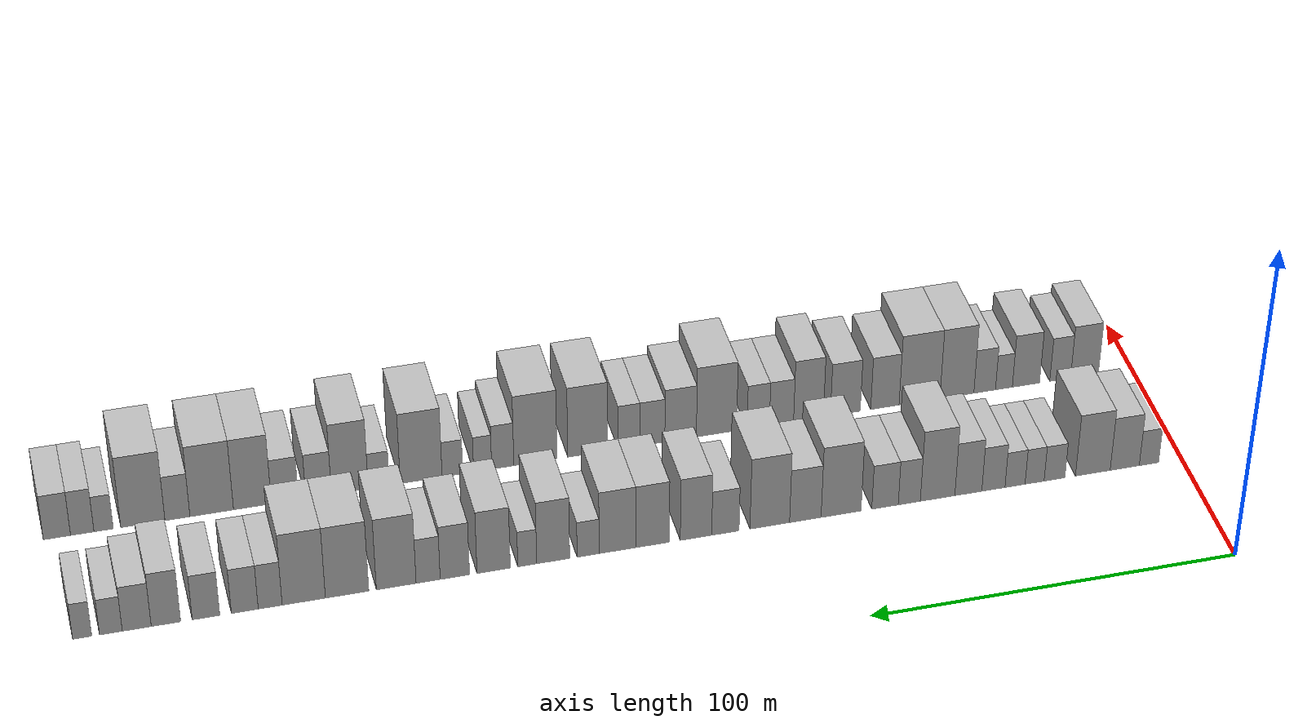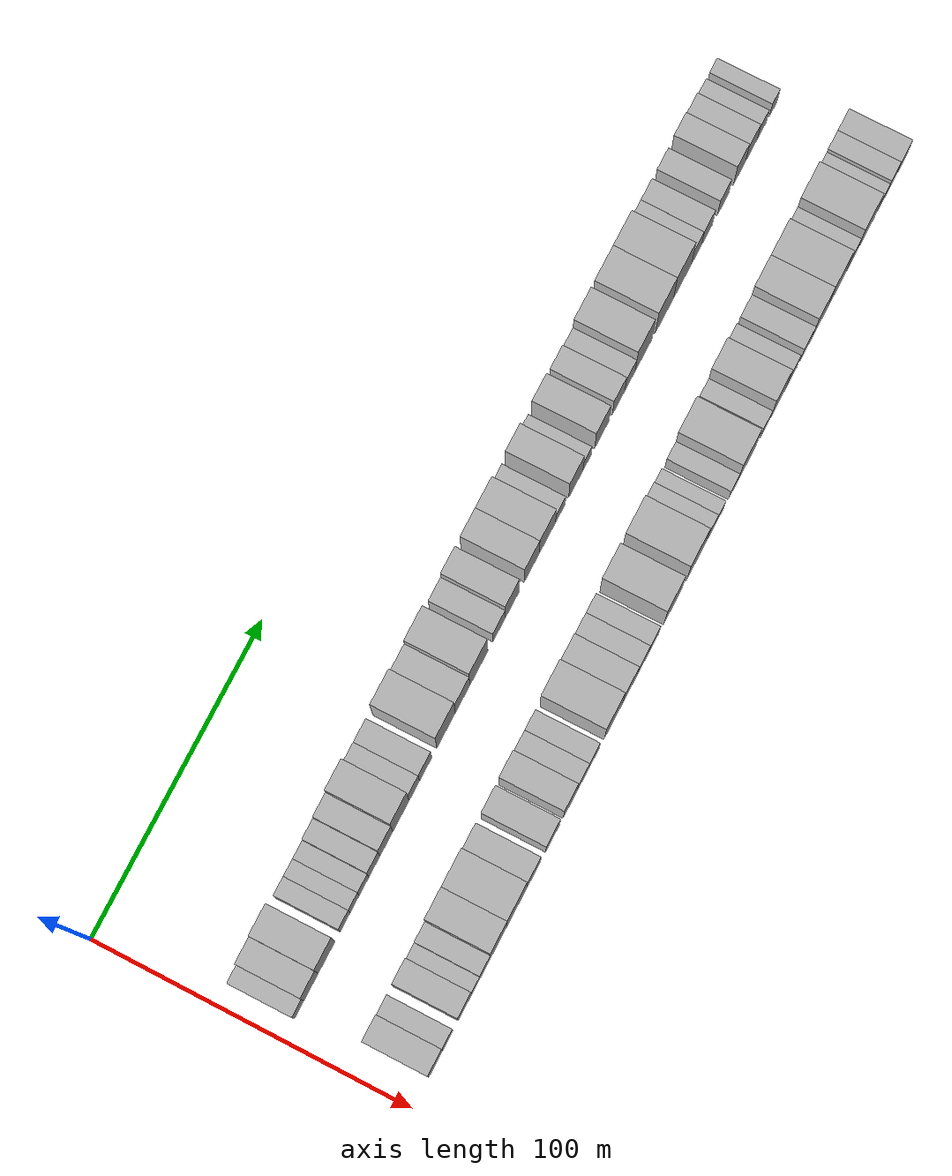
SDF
<sdf version="1.6">
 <world name="default">
  <model name="building_32">
   <static>1</static>
   <pose>50.0000 9.4290 0 0.000000 0.000000 0.000000</pose>
   <link name="link">
    <pose>0 0 6.00 0 0 0</pose>
    <collision name="collision"><geometry><box><size>20.0000 5.5220 12.0000</size></box></geometry></collision>
    <visual name="visual">
     <cast_shadows>0</cast_shadows>
     <geometry><box><size>20.0000 5.5220 12.0000</size></box></geometry>
     <material>
      <script>
       <uri>model://HANNAS_wall/materials/scripts</uri>
       <uri>model://HANNAS_wall/materials/textures</uri>
       <name>vrc/HANNAS_wall</name>
      </script>
     </material>
    </visual>
   </link>
  </model>
  <model name="building_33">
   <static>1</static>
   <pose>50.0000 16.3441 0 0.000000 0.000000 0.000000</pose>
   <link name="link">
    <pose>0 0 9.00 0 0 0</pose>
    <collision name="collision"><geometry><box><size>20.0000 8.3082 18.0000</size></box></geometry></collision>
    <visual name="visual">
     <cast_shadows>0</cast_shadows>
     <geometry><box><size>20.0000 8.3082 18.0000</size></box></geometry>
     <material>
      <script>
       <uri>model://HANNAS_wall/materials/scripts</uri>
       <uri>model://HANNAS_wall/materials/textures</uri>
       <name>vrc/HANNAS_wall</name>
      </script>
     </material>
    </visual>
   </link>
  </model>
  <model name="building_34">
   <static>1</static>
   <pose>50.0000 25.4336 0 0.000000 0.000000 0.000000</pose>
   <link name="link">
    <pose>0 0 10.50 0 0 0</pose>
    <collision name="collision"><geometry><box><size>20.0000 9.8708 21.0000</size></box></geometry></collision>
    <visual name="visual">
     <cast_shadows>0</cast_shadows>
     <geometry><box><size>20.0000 9.8708 21.0000</size></box></geometry>
     <material>
      <script>
       <uri>model://HANNAS_wall/materials/scripts</uri>
       <uri>model://HANNAS_wall/materials/textures</uri>
       <name>vrc/HANNAS_wall</name>
      </script>
     </material>
    </visual>
   </link>
  </model>
  <model name="building_35">
   <static>1</static>
   <pose>50.0000 36.3086 0 0.000000 0.000000 0.000000</pose>
   <link name="link">
    <pose>0 0 6.00 0 0 0</pose>
    <collision name="collision"><geometry><box><size>20.0000 5.8792 12.0000</size></box></geometry></collision>
    <visual name="visual">
     <cast_shadows>0</cast_shadows>
     <geometry><box><size>20.0000 5.8792 12.0000</size></box></geometry>
     <material>
      <script>
       <uri>model://HANNAS_wall/materials/scripts</uri>
       <uri>model://HANNAS_wall/materials/textures</uri>
       <name>vrc/HANNAS_wall</name>
      </script>
     </material>
    </visual>
   </link>
  </model>
  <model name="building_36">
   <static>1</static>
   <pose>50.0000 41.9393 0 0.000000 0.000000 0.000000</pose>
   <link name="link">
    <pose>0 0 6.00 0 0 0</pose>
    <collision name="collision"><geometry><box><size>20.0000 5.3821 12.0000</size></box></geometry></collision>
    <visual name="visual">
     <cast_shadows>0</cast_shadows>
     <geometry><box><size>20.0000 5.3821 12.0000</size></box></geometry>
     <material>
      <script>
       <uri>model://HANNAS_wall/materials/scripts</uri>
       <uri>model://HANNAS_wall/materials/textures</uri>
       <name>vrc/HANNAS_wall</name>
      </script>
     </material>
    </visual>
   </link>
  </model>
  <model name="building_37">
   <static>1</static>
   <pose>50.0000 47.4606 0 0.000000 0.000000 0.000000</pose>
   <link name="link">
    <pose>0 0 6.00 0 0 0</pose>
    <collision name="collision"><geometry><box><size>20.0000 5.6606 12.0000</size></box></geometry></collision>
    <visual name="visual">
     <cast_shadows>0</cast_shadows>
     <geometry><box><size>20.0000 5.6606 12.0000</size></box></geometry>
     <material>
      <script>
       <uri>model://HANNAS_wall/materials/scripts</uri>
       <uri>model://HANNAS_wall/materials/textures</uri>
       <name>vrc/HANNAS_wall</name>
      </script>
     </material>
    </visual>
   </link>
  </model>
  <model name="building_38">
   <static>1</static>
   <pose>50.0000 53.5563 0 0.000000 0.000000 0.000000</pose>
   <link name="link">
    <pose>0 0 7.50 0 0 0</pose>
    <collision name="collision"><geometry><box><size>20.0000 6.5307 15.0000</size></box></geometry></collision>
    <visual name="visual">
     <cast_shadows>0</cast_shadows>
     <geometry><box><size>20.0000 6.5307 15.0000</size></box></geometry>
     <material>
      <script>
       <uri>model://HANNAS_wall/materials/scripts</uri>
       <uri>model://HANNAS_wall/materials/textures</uri>
       <name>vrc/HANNAS_wall</name>
      </script>
     </material>
    </visual>
   </link>
  </model>
  <model name="building_39">
   <static>1</static>
   <pose>50.0000 60.6081 0 0.000000 0.000000 0.000000</pose>
   <link name="link">
    <pose>0 0 9.00 0 0 0</pose>
    <collision name="collision"><geometry><box><size>20.0000 7.5731 18.0000</size></box></geometry></collision>
    <visual name="visual">
     <cast_shadows>0</cast_shadows>
     <geometry><box><size>20.0000 7.5731 18.0000</size></box></geometry>
     <material>
      <script>
       <uri>model://HANNAS_wall/materials/scripts</uri>
       <uri>model://HANNAS_wall/materials/textures</uri>
       <name>vrc/HANNAS_wall</name>
      </script>
     </material>
    </visual>
   </link>
  </model>
  <model name="building_40">
   <static>1</static>
   <pose>50.0000 69.2219 0 0.000000 0.000000 0.000000</pose>
   <link name="link">
    <pose>0 0 12.00 0 0 0</pose>
    <collision name="collision"><geometry><box><size>20.0000 9.6545 24.0000</size></box></geometry></collision>
    <visual name="visual">
     <cast_shadows>0</cast_shadows>
     <geometry><box><size>20.0000 9.6545 24.0000</size></box></geometry>
     <material>
      <script>
       <uri>model://HANNAS_wall/materials/scripts</uri>
       <uri>model://HANNAS_wall/materials/textures</uri>
       <name>vrc/HANNAS_wall</name>
      </script>
     </material>
    </visual>
   </link>
  </model>
  <model name="building_41">
   <static>1</static>
   <pose>50.0000 77.1244 0 0.000000 0.000000 0.000000</pose>
   <link name="link">
    <pose>0 0 7.50 0 0 0</pose>
    <collision name="collision"><geometry><box><size>20.0000 6.1504 15.0000</size></box></geometry></collision>
    <visual name="visual">
     <cast_shadows>0</cast_shadows>
     <geometry><box><size>20.0000 6.1504 15.0000</size></box></geometry>
     <material>
      <script>
       <uri>model://HANNAS_wall/materials/scripts</uri>
       <uri>model://HANNAS_wall/materials/textures</uri>
       <name>vrc/HANNAS_wall</name>
      </script>
     </material>
    </visual>
   </link>
  </model>
  <model name="building_42">
   <static>1</static>
   <pose>50.0000 83.8768 0 0.000000 0.000000 0.000000</pose>
   <link name="link">
    <pose>0 0 7.50 0 0 0</pose>
    <collision name="collision"><geometry><box><size>20.0000 7.3544 15.0000</size></box></geometry></collision>
    <visual name="visual">
     <cast_shadows>0</cast_shadows>
     <geometry><box><size>20.0000 7.3544 15.0000</size></box></geometry>
     <material>
      <script>
       <uri>model://HANNAS_wall/materials/scripts</uri>
       <uri>model://HANNAS_wall/materials/textures</uri>
       <name>vrc/HANNAS_wall</name>
      </script>
     </material>
    </visual>
   </link>
  </model>
  <model name="building_43">
   <static>1</static>
   <pose>50.0000 96.0784 0 0.000000 0.000000 0.000000</pose>
   <link name="link">
    <pose>0 0 12.00 0 0 0</pose>
    <collision name="collision"><geometry><box><size>20.0000 11.0489 24.0000</size></box></geometry></collision>
    <visual name="visual">
     <cast_shadows>0</cast_shadows>
     <geometry><box><size>20.0000 11.0489 24.0000</size></box></geometry>
     <material>
      <script>
       <uri>model://HANNAS_wall/materials/scripts</uri>
       <uri>model://HANNAS_wall/materials/textures</uri>
       <name>vrc/HANNAS_wall</name>
      </script>
     </material>
    </visual>
   </link>
  </model>
  <model name="building_44">
   <static>1</static>
   <pose>50.0000 105.9426 0 0.000000 0.000000 0.000000</pose>
   <link name="link">
    <pose>0 0 9.00 0 0 0</pose>
    <collision name="collision"><geometry><box><size>20.0000 8.6797 18.0000</size></box></geometry></collision>
    <visual name="visual">
     <cast_shadows>0</cast_shadows>
     <geometry><box><size>20.0000 8.6797 18.0000</size></box></geometry>
     <material>
      <script>
       <uri>model://HANNAS_wall/materials/scripts</uri>
       <uri>model://HANNAS_wall/materials/textures</uri>
       <name>vrc/HANNAS_wall</name>
      </script>
     </material>
    </visual>
   </link>
  </model>
  <model name="building_45">
   <static>1</static>
   <pose>50.0000 115.7243 0 0.000000 0.000000 0.000000</pose>
   <link name="link">
    <pose>0 0 12.00 0 0 0</pose>
    <collision name="collision"><geometry><box><size>20.0000 10.8838 24.0000</size></box></geometry></collision>
    <visual name="visual">
     <cast_shadows>0</cast_shadows>
     <geometry><box><size>20.0000 10.8838 24.0000</size></box></geometry>
     <material>
      <script>
       <uri>model://HANNAS_wall/materials/scripts</uri>
       <uri>model://HANNAS_wall/materials/textures</uri>
       <name>vrc/HANNAS_wall</name>
      </script>
     </material>
    </visual>
   </link>
  </model>
  <model name="building_46">
   <static>1</static>
   <pose>50.0000 127.8990 0 0.000000 0.000000 0.000000</pose>
   <link name="link">
    <pose>0 0 7.50 0 0 0</pose>
    <collision name="collision"><geometry><box><size>20.0000 7.4655 15.0000</size></box></geometry></collision>
    <visual name="visual">
     <cast_shadows>0</cast_shadows>
     <geometry><box><size>20.0000 7.4655 15.0000</size></box></geometry>
     <material>
      <script>
       <uri>model://HANNAS_wall/materials/scripts</uri>
       <uri>model://HANNAS_wall/materials/textures</uri>
       <name>vrc/HANNAS_wall</name>
      </script>
     </material>
    </visual>
   </link>
  </model>
  <model name="building_47">
   <static>1</static>
   <pose>50.0000 135.9156 0 0.000000 0.000000 0.000000</pose>
   <link name="link">
    <pose>0 0 10.50 0 0 0</pose>
    <collision name="collision"><geometry><box><size>20.0000 8.5678 21.0000</size></box></geometry></collision>
    <visual name="visual">
     <cast_shadows>0</cast_shadows>
     <geometry><box><size>20.0000 8.5678 21.0000</size></box></geometry>
     <material>
      <script>
       <uri>model://HANNAS_wall/materials/scripts</uri>
       <uri>model://HANNAS_wall/materials/textures</uri>
       <name>vrc/HANNAS_wall</name>
      </script>
     </material>
    </visual>
   </link>
  </model>
  <model name="building_48">
   <static>1</static>
   <pose>50.0000 147.7416 0 0.000000 0.000000 0.000000</pose>
   <link name="link">
    <pose>0 0 10.50 0 0 0</pose>
    <collision name="collision"><geometry><box><size>20.0000 9.0842 21.0000</size></box></geometry></collision>
    <visual name="visual">
     <cast_shadows>0</cast_shadows>
     <geometry><box><size>20.0000 9.0842 21.0000</size></box></geometry>
     <material>
      <script>
       <uri>model://HANNAS_wall/materials/scripts</uri>
       <uri>model://HANNAS_wall/materials/textures</uri>
       <name>vrc/HANNAS_wall</name>
      </script>
     </material>
    </visual>
   </link>
  </model>
  <model name="building_49">
   <static>1</static>
   <pose>50.0000 157.2295 0 0.000000 0.000000 0.000000</pose>
   <link name="link">
    <pose>0 0 10.50 0 0 0</pose>
    <collision name="collision"><geometry><box><size>20.0000 9.8917 21.0000</size></box></geometry></collision>
    <visual name="visual">
     <cast_shadows>0</cast_shadows>
     <geometry><box><size>20.0000 9.8917 21.0000</size></box></geometry>
     <material>
      <script>
       <uri>model://HANNAS_wall/materials/scripts</uri>
       <uri>model://HANNAS_wall/materials/textures</uri>
       <name>vrc/HANNAS_wall</name>
      </script>
     </material>
    </visual>
   </link>
  </model>
  <model name="building_50">
   <static>1</static>
   <pose>50.0000 165.1525 0 0.000000 0.000000 0.000000</pose>
   <link name="link">
    <pose>0 0 6.00 0 0 0</pose>
    <collision name="collision"><geometry><box><size>20.0000 5.9542 12.0000</size></box></geometry></collision>
    <visual name="visual">
     <cast_shadows>0</cast_shadows>
     <geometry><box><size>20.0000 5.9542 12.0000</size></box></geometry>
     <material>
      <script>
       <uri>model://HANNAS_wall/materials/scripts</uri>
       <uri>model://HANNAS_wall/materials/textures</uri>
       <name>vrc/HANNAS_wall</name>
      </script>
     </material>
    </visual>
   </link>
  </model>
  <model name="building_51">
   <static>1</static>
   <pose>50.0000 174.5503 0 0.000000 0.000000 0.000000</pose>
   <link name="link">
    <pose>0 0 10.50 0 0 0</pose>
    <collision name="collision"><geometry><box><size>20.0000 8.8413 21.0000</size></box></geometry></collision>
    <visual name="visual">
     <cast_shadows>0</cast_shadows>
     <geometry><box><size>20.0000 8.8413 21.0000</size></box></geometry>
     <material>
      <script>
       <uri>model://HANNAS_wall/materials/scripts</uri>
       <uri>model://HANNAS_wall/materials/textures</uri>
       <name>vrc/HANNAS_wall</name>
      </script>
     </material>
    </visual>
   </link>
  </model>
  <model name="building_52">
   <static>1</static>
   <pose>50.0000 181.5075 0 0.000000 0.000000 0.000000</pose>
   <link name="link">
    <pose>0 0 6.00 0 0 0</pose>
    <collision name="collision"><geometry><box><size>20.0000 5.0731 12.0000</size></box></geometry></collision>
    <visual name="visual">
     <cast_shadows>0</cast_shadows>
     <geometry><box><size>20.0000 5.0731 12.0000</size></box></geometry>
     <material>
      <script>
       <uri>model://HANNAS_wall/materials/scripts</uri>
       <uri>model://HANNAS_wall/materials/textures</uri>
       <name>vrc/HANNAS_wall</name>
      </script>
     </material>
    </visual>
   </link>
  </model>
  <model name="building_53">
   <static>1</static>
   <pose>50.0000 190.4797 0 0.000000 0.000000 0.000000</pose>
   <link name="link">
    <pose>0 0 10.50 0 0 0</pose>
    <collision name="collision"><geometry><box><size>20.0000 8.8713 21.0000</size></box></geometry></collision>
    <visual name="visual">
     <cast_shadows>0</cast_shadows>
     <geometry><box><size>20.0000 8.8713 21.0000</size></box></geometry>
     <material>
      <script>
       <uri>model://HANNAS_wall/materials/scripts</uri>
       <uri>model://HANNAS_wall/materials/textures</uri>
       <name>vrc/HANNAS_wall</name>
      </script>
     </material>
    </visual>
   </link>
  </model>
  <model name="building_54">
   <static>1</static>
   <pose>50.0000 200.8064 0 0.000000 0.000000 0.000000</pose>
   <link name="link">
    <pose>0 0 9.00 0 0 0</pose>
    <collision name="collision"><geometry><box><size>20.0000 7.7822 18.0000</size></box></geometry></collision>
    <visual name="visual">
     <cast_shadows>0</cast_shadows>
     <geometry><box><size>20.0000 7.7822 18.0000</size></box></geometry>
     <material>
      <script>
       <uri>model://HANNAS_wall/materials/scripts</uri>
       <uri>model://HANNAS_wall/materials/textures</uri>
       <name>vrc/HANNAS_wall</name>
      </script>
     </material>
    </visual>
   </link>
  </model>
  <model name="building_55">
   <static>1</static>
   <pose>50.0000 207.8902 0 0.000000 0.000000 0.000000</pose>
   <link name="link">
    <pose>0 0 7.50 0 0 0</pose>
    <collision name="collision"><geometry><box><size>20.0000 6.3853 15.0000</size></box></geometry></collision>
    <visual name="visual">
     <cast_shadows>0</cast_shadows>
     <geometry><box><size>20.0000 6.3853 15.0000</size></box></geometry>
     <material>
      <script>
       <uri>model://HANNAS_wall/materials/scripts</uri>
       <uri>model://HANNAS_wall/materials/textures</uri>
       <name>vrc/HANNAS_wall</name>
      </script>
     </material>
    </visual>
   </link>
  </model>
  <model name="building_56">
   <static>1</static>
   <pose>50.0000 216.3298 0 0.000000 0.000000 0.000000</pose>
   <link name="link">
    <pose>0 0 12.00 0 0 0</pose>
    <collision name="collision"><geometry><box><size>20.0000 10.4939 24.0000</size></box></geometry></collision>
    <visual name="visual">
     <cast_shadows>0</cast_shadows>
     <geometry><box><size>20.0000 10.4939 24.0000</size></box></geometry>
     <material>
      <script>
       <uri>model://HANNAS_wall/materials/scripts</uri>
       <uri>model://HANNAS_wall/materials/textures</uri>
       <name>vrc/HANNAS_wall</name>
      </script>
     </material>
    </visual>
   </link>
  </model>
  <model name="building_57">
   <static>1</static>
   <pose>50.0000 229.2718 0 0.000000 0.000000 0.000000</pose>
   <link name="link">
    <pose>0 0 12.00 0 0 0</pose>
    <collision name="collision"><geometry><box><size>20.0000 11.3902 24.0000</size></box></geometry></collision>
    <visual name="visual">
     <cast_shadows>0</cast_shadows>
     <geometry><box><size>20.0000 11.3902 24.0000</size></box></geometry>
     <material>
      <script>
       <uri>model://HANNAS_wall/materials/scripts</uri>
       <uri>model://HANNAS_wall/materials/textures</uri>
       <name>vrc/HANNAS_wall</name>
      </script>
     </material>
    </visual>
   </link>
  </model>
  <model name="building_58">
   <static>1</static>
   <pose>50.0000 240.6241 0 0.000000 0.000000 0.000000</pose>
   <link name="link">
    <pose>0 0 12.00 0 0 0</pose>
    <collision name="collision"><geometry><box><size>20.0000 11.3144 24.0000</size></box></geometry></collision>
    <visual name="visual">
     <cast_shadows>0</cast_shadows>
     <geometry><box><size>20.0000 11.3144 24.0000</size></box></geometry>
     <material>
      <script>
       <uri>model://HANNAS_wall/materials/scripts</uri>
       <uri>model://HANNAS_wall/materials/textures</uri>
       <name>vrc/HANNAS_wall</name>
      </script>
     </material>
    </visual>
   </link>
  </model>
  <model name="building_59">
   <static>1</static>
   <pose>50.0000 249.4030 0 0.000000 0.000000 0.000000</pose>
   <link name="link">
    <pose>0 0 7.50 0 0 0</pose>
    <collision name="collision"><geometry><box><size>20.0000 6.2435 15.0000</size></box></geometry></collision>
    <visual name="visual">
     <cast_shadows>0</cast_shadows>
     <geometry><box><size>20.0000 6.2435 15.0000</size></box></geometry>
     <material>
      <script>
       <uri>model://HANNAS_wall/materials/scripts</uri>
       <uri>model://HANNAS_wall/materials/textures</uri>
       <name>vrc/HANNAS_wall</name>
      </script>
     </material>
    </visual>
   </link>
  </model>
  <model name="building_60">
   <static>1</static>
   <pose>50.0000 256.0149 0 0.000000 0.000000 0.000000</pose>
   <link name="link">
    <pose>0 0 7.50 0 0 0</pose>
    <collision name="collision"><geometry><box><size>20.0000 6.9802 15.0000</size></box></geometry></collision>
    <visual name="visual">
     <cast_shadows>0</cast_shadows>
     <geometry><box><size>20.0000 6.9802 15.0000</size></box></geometry>
     <material>
      <script>
       <uri>model://HANNAS_wall/materials/scripts</uri>
       <uri>model://HANNAS_wall/materials/textures</uri>
       <name>vrc/HANNAS_wall</name>
      </script>
     </material>
    </visual>
   </link>
  </model>
  <model name="building_61">
   <static>1</static>
   <pose>50.0000 266.0698 0 0.000000 0.000000 0.000000</pose>
   <link name="link">
    <pose>0 0 7.50 0 0 0</pose>
    <collision name="collision"><geometry><box><size>20.0000 7.1296 15.0000</size></box></geometry></collision>
    <visual name="visual">
     <cast_shadows>0</cast_shadows>
     <geometry><box><size>20.0000 7.1296 15.0000</size></box></geometry>
     <material>
      <script>
       <uri>model://HANNAS_wall/materials/scripts</uri>
       <uri>model://HANNAS_wall/materials/textures</uri>
       <name>vrc/HANNAS_wall</name>
      </script>
     </material>
    </visual>
   </link>
  </model>
  <model name="building_62">
   <static>1</static>
   <pose>50.0000 276.4261 0 0.000000 0.000000 0.000000</pose>
   <link name="link">
    <pose>0 0 9.00 0 0 0</pose>
    <collision name="collision"><geometry><box><size>20.0000 7.5830 18.0000</size></box></geometry></collision>
    <visual name="visual">
     <cast_shadows>0</cast_shadows>
     <geometry><box><size>20.0000 7.5830 18.0000</size></box></geometry>
     <material>
      <script>
       <uri>model://HANNAS_wall/materials/scripts</uri>
       <uri>model://HANNAS_wall/materials/textures</uri>
       <name>vrc/HANNAS_wall</name>
      </script>
     </material>
    </visual>
   </link>
  </model>
  <model name="building_63">
   <static>1</static>
   <pose>50.0000 283.9434 0 0.000000 0.000000 0.000000</pose>
   <link name="link">
    <pose>0 0 7.50 0 0 0</pose>
    <collision name="collision"><geometry><box><size>20.0000 7.4516 15.0000</size></box></geometry></collision>
    <visual name="visual">
     <cast_shadows>0</cast_shadows>
     <geometry><box><size>20.0000 7.4516 15.0000</size></box></geometry>
     <material>
      <script>
       <uri>model://HANNAS_wall/materials/scripts</uri>
       <uri>model://HANNAS_wall/materials/textures</uri>
       <name>vrc/HANNAS_wall</name>
      </script>
     </material>
    </visual>
   </link>
  </model>
  <model name="building_64">
   <static>1</static>
   <pose>50.0000 290.5833 0 0.000000 0.000000 0.000000</pose>
   <link name="link">
    <pose>0 0 6.00 0 0 0</pose>
    <collision name="collision"><geometry><box><size>20.0000 5.8281 12.0000</size></box></geometry></collision>
    <visual name="visual">
     <cast_shadows>0</cast_shadows>
     <geometry><box><size>20.0000 5.8281 12.0000</size></box></geometry>
     <material>
      <script>
       <uri>model://HANNAS_wall/materials/scripts</uri>
       <uri>model://HANNAS_wall/materials/textures</uri>
       <name>vrc/HANNAS_wall</name>
      </script>
     </material>
    </visual>
   </link>
  </model>
  <model name="building_65">
   <static>1</static>
   <pose>50.0000 297.9425 0 0.000000 0.000000 0.000000</pose>
   <link name="link">
    <pose>0 0 6.00 0 0 0</pose>
    <collision name="collision"><geometry><box><size>20.0000 4.8903 12.0000</size></box></geometry></collision>
    <visual name="visual">
     <cast_shadows>0</cast_shadows>
     <geometry><box><size>20.0000 4.8903 12.0000</size></box></geometry>
     <material>
      <script>
       <uri>model://HANNAS_wall/materials/scripts</uri>
       <uri>model://HANNAS_wall/materials/textures</uri>
       <name>vrc/HANNAS_wall</name>
      </script>
     </material>
    </visual>
   </link>
  </model>
  <model name="building_102">
   <static>1</static>
   <pose>90.0000 13.7612 0 0.000000 0.000000 0.000000</pose>
   <link name="link">
    <pose>0 0 9.00 0 0 0</pose>
    <collision name="collision"><geometry><box><size>20.0000 8.1746 18.0000</size></box></geometry></collision>
    <visual name="visual">
     <cast_shadows>0</cast_shadows>
     <geometry><box><size>20.0000 8.1746 18.0000</size></box></geometry>
     <material>
      <script>
       <uri>model://HANNAS_wall/materials/scripts</uri>
       <uri>model://HANNAS_wall/materials/textures</uri>
       <name>vrc/HANNAS_wall</name>
      </script>
     </material>
    </visual>
   </link>
  </model>
  <model name="building_103">
   <static>1</static>
   <pose>90.0000 20.8917 0 0.000000 0.000000 0.000000</pose>
   <link name="link">
    <pose>0 0 7.50 0 0 0</pose>
    <collision name="collision"><geometry><box><size>20.0000 6.0864 15.0000</size></box></geometry></collision>
    <visual name="visual">
     <cast_shadows>0</cast_shadows>
     <geometry><box><size>20.0000 6.0864 15.0000</size></box></geometry>
     <material>
      <script>
       <uri>model://HANNAS_wall/materials/scripts</uri>
       <uri>model://HANNAS_wall/materials/textures</uri>
       <name>vrc/HANNAS_wall</name>
      </script>
     </material>
    </visual>
   </link>
  </model>
  <model name="building_104">
   <static>1</static>
   <pose>90.0000 30.9049 0 0.000000 0.000000 0.000000</pose>
   <link name="link">
    <pose>0 0 9.00 0 0 0</pose>
    <collision name="collision"><geometry><box><size>20.0000 7.9398 18.0000</size></box></geometry></collision>
    <visual name="visual">
     <cast_shadows>0</cast_shadows>
     <geometry><box><size>20.0000 7.9398 18.0000</size></box></geometry>
     <material>
      <script>
       <uri>model://HANNAS_wall/materials/scripts</uri>
       <uri>model://HANNAS_wall/materials/textures</uri>
       <name>vrc/HANNAS_wall</name>
      </script>
     </material>
    </visual>
   </link>
  </model>
  <model name="building_105">
   <static>1</static>
   <pose>90.0000 37.3291 0 0.000000 0.000000 0.000000</pose>
   <link name="link">
    <pose>0 0 6.00 0 0 0</pose>
    <collision name="collision"><geometry><box><size>20.0000 4.9086 12.0000</size></box></geometry></collision>
    <visual name="visual">
     <cast_shadows>0</cast_shadows>
     <geometry><box><size>20.0000 4.9086 12.0000</size></box></geometry>
     <material>
      <script>
       <uri>model://HANNAS_wall/materials/scripts</uri>
       <uri>model://HANNAS_wall/materials/textures</uri>
       <name>vrc/HANNAS_wall</name>
      </script>
     </material>
    </visual>
   </link>
  </model>
  <model name="building_106">
   <static>1</static>
   <pose>90.0000 42.9292 0 0.000000 0.000000 0.000000</pose>
   <link name="link">
    <pose>0 0 7.50 0 0 0</pose>
    <collision name="collision"><geometry><box><size>20.0000 6.2915 15.0000</size></box></geometry></collision>
    <visual name="visual">
     <cast_shadows>0</cast_shadows>
     <geometry><box><size>20.0000 6.2915 15.0000</size></box></geometry>
     <material>
      <script>
       <uri>model://HANNAS_wall/materials/scripts</uri>
       <uri>model://HANNAS_wall/materials/textures</uri>
       <name>vrc/HANNAS_wall</name>
      </script>
     </material>
    </visual>
   </link>
  </model>
  <model name="building_107">
   <static>1</static>
   <pose>90.0000 50.9989 0 0.000000 0.000000 0.000000</pose>
   <link name="link">
    <pose>0 0 12.00 0 0 0</pose>
    <collision name="collision"><geometry><box><size>20.0000 9.8479 24.0000</size></box></geometry></collision>
    <visual name="visual">
     <cast_shadows>0</cast_shadows>
     <geometry><box><size>20.0000 9.8479 24.0000</size></box></geometry>
     <material>
      <script>
       <uri>model://HANNAS_wall/materials/scripts</uri>
       <uri>model://HANNAS_wall/materials/textures</uri>
       <name>vrc/HANNAS_wall</name>
      </script>
     </material>
    </visual>
   </link>
  </model>
  <model name="building_108">
   <static>1</static>
   <pose>90.0000 61.8139 0 0.000000 0.000000 0.000000</pose>
   <link name="link">
    <pose>0 0 12.00 0 0 0</pose>
    <collision name="collision"><geometry><box><size>20.0000 11.7822 24.0000</size></box></geometry></collision>
    <visual name="visual">
     <cast_shadows>0</cast_shadows>
     <geometry><box><size>20.0000 11.7822 24.0000</size></box></geometry>
     <material>
      <script>
       <uri>model://HANNAS_wall/materials/scripts</uri>
       <uri>model://HANNAS_wall/materials/textures</uri>
       <name>vrc/HANNAS_wall</name>
      </script>
     </material>
    </visual>
   </link>
  </model>
  <model name="building_109">
   <static>1</static>
   <pose>90.0000 71.7843 0 0.000000 0.000000 0.000000</pose>
   <link name="link">
    <pose>0 0 9.00 0 0 0</pose>
    <collision name="collision"><geometry><box><size>20.0000 8.1585 18.0000</size></box></geometry></collision>
    <visual name="visual">
     <cast_shadows>0</cast_shadows>
     <geometry><box><size>20.0000 8.1585 18.0000</size></box></geometry>
     <material>
      <script>
       <uri>model://HANNAS_wall/materials/scripts</uri>
       <uri>model://HANNAS_wall/materials/textures</uri>
       <name>vrc/HANNAS_wall</name>
      </script>
     </material>
    </visual>
   </link>
  </model>
  <model name="building_110">
   <static>1</static>
   <pose>90.0000 83.1417 0 0.000000 0.000000 0.000000</pose>
   <link name="link">
    <pose>0 0 9.00 0 0 0</pose>
    <collision name="collision"><geometry><box><size>20.0000 8.5563 18.0000</size></box></geometry></collision>
    <visual name="visual">
     <cast_shadows>0</cast_shadows>
     <geometry><box><size>20.0000 8.5563 18.0000</size></box></geometry>
     <material>
      <script>
       <uri>model://HANNAS_wall/materials/scripts</uri>
       <uri>model://HANNAS_wall/materials/textures</uri>
       <name>vrc/HANNAS_wall</name>
      </script>
     </material>
    </visual>
   </link>
  </model>
  <model name="building_111">
   <static>1</static>
   <pose>90.0000 93.6697 0 0.000000 0.000000 0.000000</pose>
   <link name="link">
    <pose>0 0 10.50 0 0 0</pose>
    <collision name="collision"><geometry><box><size>20.0000 8.4997 21.0000</size></box></geometry></collision>
    <visual name="visual">
     <cast_shadows>0</cast_shadows>
     <geometry><box><size>20.0000 8.4997 21.0000</size></box></geometry>
     <material>
      <script>
       <uri>model://HANNAS_wall/materials/scripts</uri>
       <uri>model://HANNAS_wall/materials/textures</uri>
       <name>vrc/HANNAS_wall</name>
      </script>
     </material>
    </visual>
   </link>
  </model>
  <model name="building_112">
   <static>1</static>
   <pose>90.0000 101.3512 0 0.000000 0.000000 0.000000</pose>
   <link name="link">
    <pose>0 0 7.50 0 0 0</pose>
    <collision name="collision"><geometry><box><size>20.0000 6.8634 15.0000</size></box></geometry></collision>
    <visual name="visual">
     <cast_shadows>0</cast_shadows>
     <geometry><box><size>20.0000 6.8634 15.0000</size></box></geometry>
     <material>
      <script>
       <uri>model://HANNAS_wall/materials/scripts</uri>
       <uri>model://HANNAS_wall/materials/textures</uri>
       <name>vrc/HANNAS_wall</name>
      </script>
     </material>
    </visual>
   </link>
  </model>
  <model name="building_113">
   <static>1</static>
   <pose>90.0000 107.9482 0 0.000000 0.000000 0.000000</pose>
   <link name="link">
    <pose>0 0 7.50 0 0 0</pose>
    <collision name="collision"><geometry><box><size>20.0000 6.3305 15.0000</size></box></geometry></collision>
    <visual name="visual">
     <cast_shadows>0</cast_shadows>
     <geometry><box><size>20.0000 6.3305 15.0000</size></box></geometry>
     <material>
      <script>
       <uri>model://HANNAS_wall/materials/scripts</uri>
       <uri>model://HANNAS_wall/materials/textures</uri>
       <name>vrc/HANNAS_wall</name>
      </script>
     </material>
    </visual>
   </link>
  </model>
  <model name="building_114">
   <static>1</static>
   <pose>90.0000 119.7787 0 0.000000 0.000000 0.000000</pose>
   <link name="link">
    <pose>0 0 12.00 0 0 0</pose>
    <collision name="collision"><geometry><box><size>20.0000 11.3306 24.0000</size></box></geometry></collision>
    <visual name="visual">
     <cast_shadows>0</cast_shadows>
     <geometry><box><size>20.0000 11.3306 24.0000</size></box></geometry>
     <material>
      <script>
       <uri>model://HANNAS_wall/materials/scripts</uri>
       <uri>model://HANNAS_wall/materials/textures</uri>
       <name>vrc/HANNAS_wall</name>
      </script>
     </material>
    </visual>
   </link>
  </model>
  <model name="building_115">
   <static>1</static>
   <pose>90.0000 129.8867 0 0.000000 0.000000 0.000000</pose>
   <link name="link">
    <pose>0 0 9.00 0 0 0</pose>
    <collision name="collision"><geometry><box><size>20.0000 8.8853 18.0000</size></box></geometry></collision>
    <visual name="visual">
     <cast_shadows>0</cast_shadows>
     <geometry><box><size>20.0000 8.8853 18.0000</size></box></geometry>
     <material>
      <script>
       <uri>model://HANNAS_wall/materials/scripts</uri>
       <uri>model://HANNAS_wall/materials/textures</uri>
       <name>vrc/HANNAS_wall</name>
      </script>
     </material>
    </visual>
   </link>
  </model>
  <model name="building_116">
   <static>1</static>
   <pose>90.0000 137.8384 0 0.000000 0.000000 0.000000</pose>
   <link name="link">
    <pose>0 0 7.50 0 0 0</pose>
    <collision name="collision"><geometry><box><size>20.0000 7.0181 15.0000</size></box></geometry></collision>
    <visual name="visual">
     <cast_shadows>0</cast_shadows>
     <geometry><box><size>20.0000 7.0181 15.0000</size></box></geometry>
     <material>
      <script>
       <uri>model://HANNAS_wall/materials/scripts</uri>
       <uri>model://HANNAS_wall/materials/textures</uri>
       <name>vrc/HANNAS_wall</name>
      </script>
     </material>
    </visual>
   </link>
  </model>
  <model name="building_117">
   <static>1</static>
   <pose>90.0000 144.3799 0 0.000000 0.000000 0.000000</pose>
   <link name="link">
    <pose>0 0 7.50 0 0 0</pose>
    <collision name="collision"><geometry><box><size>20.0000 6.0649 15.0000</size></box></geometry></collision>
    <visual name="visual">
     <cast_shadows>0</cast_shadows>
     <geometry><box><size>20.0000 6.0649 15.0000</size></box></geometry>
     <material>
      <script>
       <uri>model://HANNAS_wall/materials/scripts</uri>
       <uri>model://HANNAS_wall/materials/textures</uri>
       <name>vrc/HANNAS_wall</name>
      </script>
     </material>
    </visual>
   </link>
  </model>
  <model name="building_118">
   <static>1</static>
   <pose>90.0000 155.9357 0 0.000000 0.000000 0.000000</pose>
   <link name="link">
    <pose>0 0 12.00 0 0 0</pose>
    <collision name="collision"><geometry><box><size>20.0000 11.0467 24.0000</size></box></geometry></collision>
    <visual name="visual">
     <cast_shadows>0</cast_shadows>
     <geometry><box><size>20.0000 11.0467 24.0000</size></box></geometry>
     <material>
      <script>
       <uri>model://HANNAS_wall/materials/scripts</uri>
       <uri>model://HANNAS_wall/materials/textures</uri>
       <name>vrc/HANNAS_wall</name>
      </script>
     </material>
    </visual>
   </link>
  </model>
  <model name="building_119">
   <static>1</static>
   <pose>90.0000 170.4242 0 0.000000 0.000000 0.000000</pose>
   <link name="link">
    <pose>0 0 12.00 0 0 0</pose>
    <collision name="collision"><geometry><box><size>20.0000 11.9303 24.0000</size></box></geometry></collision>
    <visual name="visual">
     <cast_shadows>0</cast_shadows>
     <geometry><box><size>20.0000 11.9303 24.0000</size></box></geometry>
     <material>
      <script>
       <uri>model://HANNAS_wall/materials/scripts</uri>
       <uri>model://HANNAS_wall/materials/textures</uri>
       <name>vrc/HANNAS_wall</name>
      </script>
     </material>
    </visual>
   </link>
  </model>
  <model name="building_120">
   <static>1</static>
   <pose>90.0000 179.4521 0 0.000000 0.000000 0.000000</pose>
   <link name="link">
    <pose>0 0 7.50 0 0 0</pose>
    <collision name="collision"><geometry><box><size>20.0000 6.1255 15.0000</size></box></geometry></collision>
    <visual name="visual">
     <cast_shadows>0</cast_shadows>
     <geometry><box><size>20.0000 6.1255 15.0000</size></box></geometry>
     <material>
      <script>
       <uri>model://HANNAS_wall/materials/scripts</uri>
       <uri>model://HANNAS_wall/materials/textures</uri>
       <name>vrc/HANNAS_wall</name>
      </script>
     </material>
    </visual>
   </link>
  </model>
  <model name="building_121">
   <static>1</static>
   <pose>90.0000 184.9985 0 0.000000 0.000000 0.000000</pose>
   <link name="link">
    <pose>0 0 6.00 0 0 0</pose>
    <collision name="collision"><geometry><box><size>20.0000 4.9672 12.0000</size></box></geometry></collision>
    <visual name="visual">
     <cast_shadows>0</cast_shadows>
     <geometry><box><size>20.0000 4.9672 12.0000</size></box></geometry>
     <material>
      <script>
       <uri>model://HANNAS_wall/materials/scripts</uri>
       <uri>model://HANNAS_wall/materials/textures</uri>
       <name>vrc/HANNAS_wall</name>
      </script>
     </material>
    </visual>
   </link>
  </model>
  <model name="building_122">
   <static>1</static>
   <pose>90.0000 193.3153 0 0.000000 0.000000 0.000000</pose>
   <link name="link">
    <pose>0 0 6.00 0 0 0</pose>
    <collision name="collision"><geometry><box><size>20.0000 5.6664 12.0000</size></box></geometry></collision>
    <visual name="visual">
     <cast_shadows>0</cast_shadows>
     <geometry><box><size>20.0000 5.6664 12.0000</size></box></geometry>
     <material>
      <script>
       <uri>model://HANNAS_wall/materials/scripts</uri>
       <uri>model://HANNAS_wall/materials/textures</uri>
       <name>vrc/HANNAS_wall</name>
      </script>
     </material>
    </visual>
   </link>
  </model>
  <model name="building_123">
   <static>1</static>
   <pose>90.0000 201.8727 0 0.000000 0.000000 0.000000</pose>
   <link name="link">
    <pose>0 0 12.00 0 0 0</pose>
    <collision name="collision"><geometry><box><size>20.0000 11.4484 24.0000</size></box></geometry></collision>
    <visual name="visual">
     <cast_shadows>0</cast_shadows>
     <geometry><box><size>20.0000 11.4484 24.0000</size></box></geometry>
     <material>
      <script>
       <uri>model://HANNAS_wall/materials/scripts</uri>
       <uri>model://HANNAS_wall/materials/textures</uri>
       <name>vrc/HANNAS_wall</name>
      </script>
     </material>
    </visual>
   </link>
  </model>
  <model name="building_124">
   <static>1</static>
   <pose>90.0000 213.4595 0 0.000000 0.000000 0.000000</pose>
   <link name="link">
    <pose>0 0 6.00 0 0 0</pose>
    <collision name="collision"><geometry><box><size>20.0000 5.7252 12.0000</size></box></geometry></collision>
    <visual name="visual">
     <cast_shadows>0</cast_shadows>
     <geometry><box><size>20.0000 5.7252 12.0000</size></box></geometry>
     <material>
      <script>
       <uri>model://HANNAS_wall/materials/scripts</uri>
       <uri>model://HANNAS_wall/materials/textures</uri>
       <name>vrc/HANNAS_wall</name>
      </script>
     </material>
    </visual>
   </link>
  </model>
  <model name="building_125">
   <static>1</static>
   <pose>90.0000 221.3159 0 0.000000 0.000000 0.000000</pose>
   <link name="link">
    <pose>0 0 12.00 0 0 0</pose>
    <collision name="collision"><geometry><box><size>20.0000 9.9875 24.0000</size></box></geometry></collision>
    <visual name="visual">
     <cast_shadows>0</cast_shadows>
     <geometry><box><size>20.0000 9.9875 24.0000</size></box></geometry>
     <material>
      <script>
       <uri>model://HANNAS_wall/materials/scripts</uri>
       <uri>model://HANNAS_wall/materials/textures</uri>
       <name>vrc/HANNAS_wall</name>
      </script>
     </material>
    </visual>
   </link>
  </model>
  <model name="building_126">
   <static>1</static>
   <pose>90.0000 229.7946 0 0.000000 0.000000 0.000000</pose>
   <link name="link">
    <pose>0 0 7.50 0 0 0</pose>
    <collision name="collision"><geometry><box><size>20.0000 6.9701 15.0000</size></box></geometry></collision>
    <visual name="visual">
     <cast_shadows>0</cast_shadows>
     <geometry><box><size>20.0000 6.9701 15.0000</size></box></geometry>
     <material>
      <script>
       <uri>model://HANNAS_wall/materials/scripts</uri>
       <uri>model://HANNAS_wall/materials/textures</uri>
       <name>vrc/HANNAS_wall</name>
      </script>
     </material>
    </visual>
   </link>
  </model>
  <model name="building_127">
   <static>1</static>
   <pose>90.0000 238.9238 0 0.000000 0.000000 0.000000</pose>
   <link name="link">
    <pose>0 0 7.50 0 0 0</pose>
    <collision name="collision"><geometry><box><size>20.0000 7.2883 15.0000</size></box></geometry></collision>
    <visual name="visual">
     <cast_shadows>0</cast_shadows>
     <geometry><box><size>20.0000 7.2883 15.0000</size></box></geometry>
     <material>
      <script>
       <uri>model://HANNAS_wall/materials/scripts</uri>
       <uri>model://HANNAS_wall/materials/textures</uri>
       <name>vrc/HANNAS_wall</name>
      </script>
     </material>
    </visual>
   </link>
  </model>
  <model name="building_128">
   <static>1</static>
   <pose>90.0000 247.6654 0 0.000000 0.000000 0.000000</pose>
   <link name="link">
    <pose>0 0 12.00 0 0 0</pose>
    <collision name="collision"><geometry><box><size>20.0000 10.1949 24.0000</size></box></geometry></collision>
    <visual name="visual">
     <cast_shadows>0</cast_shadows>
     <geometry><box><size>20.0000 10.1949 24.0000</size></box></geometry>
     <material>
      <script>
       <uri>model://HANNAS_wall/materials/scripts</uri>
       <uri>model://HANNAS_wall/materials/textures</uri>
       <name>vrc/HANNAS_wall</name>
      </script>
     </material>
    </visual>
   </link>
  </model>
  <model name="building_129">
   <static>1</static>
   <pose>90.0000 258.5960 0 0.000000 0.000000 0.000000</pose>
   <link name="link">
    <pose>0 0 12.00 0 0 0</pose>
    <collision name="collision"><geometry><box><size>20.0000 11.6663 24.0000</size></box></geometry></collision>
    <visual name="visual">
     <cast_shadows>0</cast_shadows>
     <geometry><box><size>20.0000 11.6663 24.0000</size></box></geometry>
     <material>
      <script>
       <uri>model://HANNAS_wall/materials/scripts</uri>
       <uri>model://HANNAS_wall/materials/textures</uri>
       <name>vrc/HANNAS_wall</name>
      </script>
     </material>
    </visual>
   </link>
  </model>
  <model name="building_130">
   <static>1</static>
   <pose>90.0000 267.7659 0 0.000000 0.000000 0.000000</pose>
   <link name="link">
    <pose>0 0 7.50 0 0 0</pose>
    <collision name="collision"><geometry><box><size>20.0000 6.6734 15.0000</size></box></geometry></collision>
    <visual name="visual">
     <cast_shadows>0</cast_shadows>
     <geometry><box><size>20.0000 6.6734 15.0000</size></box></geometry>
     <material>
      <script>
       <uri>model://HANNAS_wall/materials/scripts</uri>
       <uri>model://HANNAS_wall/materials/textures</uri>
       <name>vrc/HANNAS_wall</name>
      </script>
     </material>
    </visual>
   </link>
  </model>
  <model name="building_131">
   <static>1</static>
   <pose>90.0000 276.9827 0 0.000000 0.000000 0.000000</pose>
   <link name="link">
    <pose>0 0 12.00 0 0 0</pose>
    <collision name="collision"><geometry><box><size>20.0000 11.7604 24.0000</size></box></geometry></collision>
    <visual name="visual">
     <cast_shadows>0</cast_shadows>
     <geometry><box><size>20.0000 11.7604 24.0000</size></box></geometry>
     <material>
      <script>
       <uri>model://HANNAS_wall/materials/scripts</uri>
       <uri>model://HANNAS_wall/materials/textures</uri>
       <name>vrc/HANNAS_wall</name>
      </script>
     </material>
    </visual>
   </link>
  </model>
  <model name="building_132">
   <static>1</static>
   <pose>90.0000 287.4120 0 0.000000 0.000000 0.000000</pose>
   <link name="link">
    <pose>0 0 6.00 0 0 0</pose>
    <collision name="collision"><geometry><box><size>20.0000 5.0981 12.0000</size></box></geometry></collision>
    <visual name="visual">
     <cast_shadows>0</cast_shadows>
     <geometry><box><size>20.0000 5.0981 12.0000</size></box></geometry>
     <material>
      <script>
       <uri>model://HANNAS_wall/materials/scripts</uri>
       <uri>model://HANNAS_wall/materials/textures</uri>
       <name>vrc/HANNAS_wall</name>
      </script>
     </material>
    </visual>
   </link>
  </model>
  <model name="building_133">
   <static>1</static>
   <pose>90.0000 293.0583 0 0.000000 0.000000 0.000000</pose>
   <link name="link">
    <pose>0 0 7.50 0 0 0</pose>
    <collision name="collision"><geometry><box><size>20.0000 6.1946 15.0000</size></box></geometry></collision>
    <visual name="visual">
     <cast_shadows>0</cast_shadows>
     <geometry><box><size>20.0000 6.1946 15.0000</size></box></geometry>
     <material>
      <script>
       <uri>model://HANNAS_wall/materials/scripts</uri>
       <uri>model://HANNAS_wall/materials/textures</uri>
       <name>vrc/HANNAS_wall</name>
      </script>
     </material>
    </visual>
   </link>
  </model>
  <model name="building_134">
   <static>1</static>
   <pose>90.0000 299.7449 0 0.000000 0.000000 0.000000</pose>
   <link name="link">
    <pose>0 0 7.50 0 0 0</pose>
    <collision name="collision"><geometry><box><size>20.0000 7.1788 15.0000</size></box></geometry></collision>
    <visual name="visual">
     <cast_shadows>0</cast_shadows>
     <geometry><box><size>20.0000 7.1788 15.0000</size></box></geometry>
     <material>
      <script>
       <uri>model://HANNAS_wall/materials/scripts</uri>
       <uri>model://HANNAS_wall/materials/textures</uri>
       <name>vrc/HANNAS_wall</name>
      </script>
     </material>
    </visual>
   </link>
  </model>
 </world>
</sdf>
